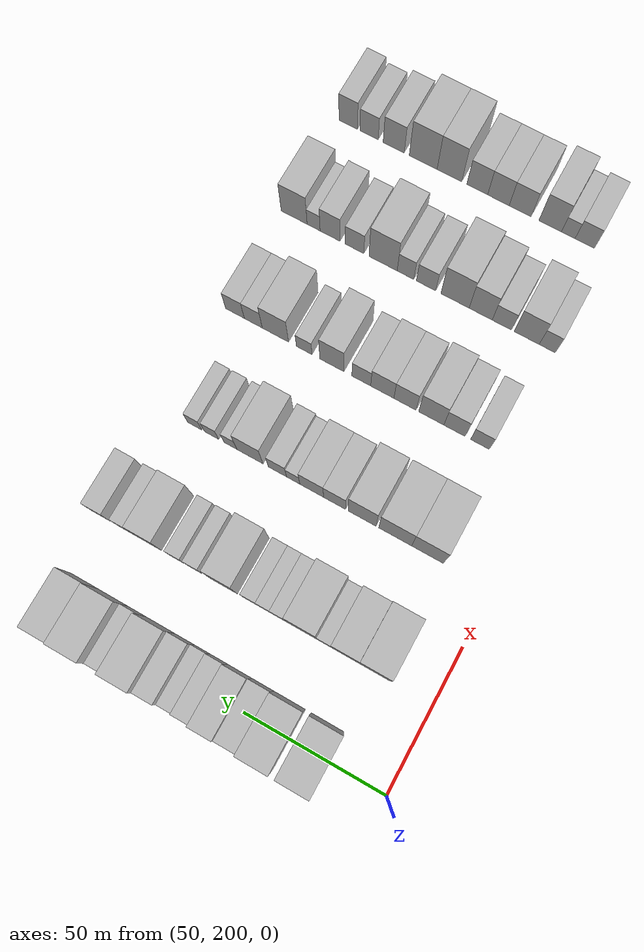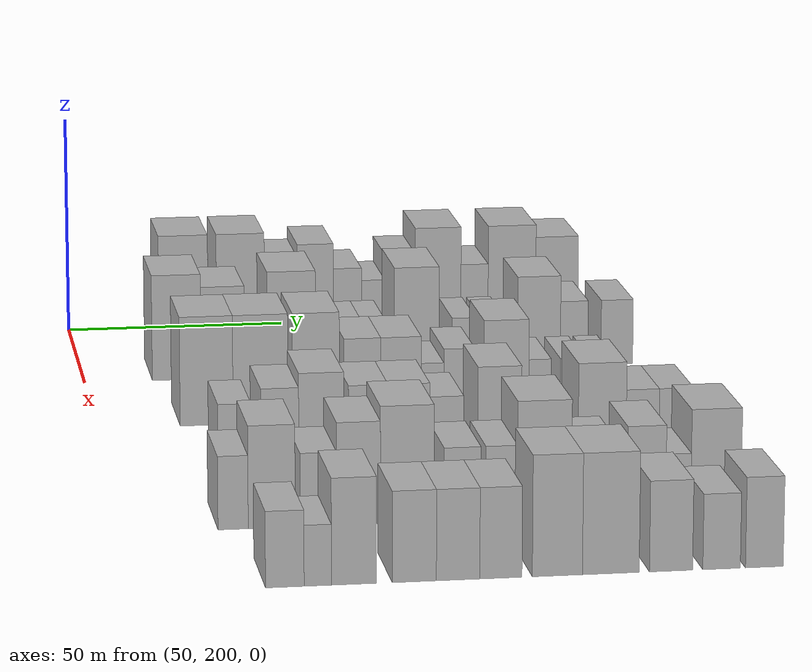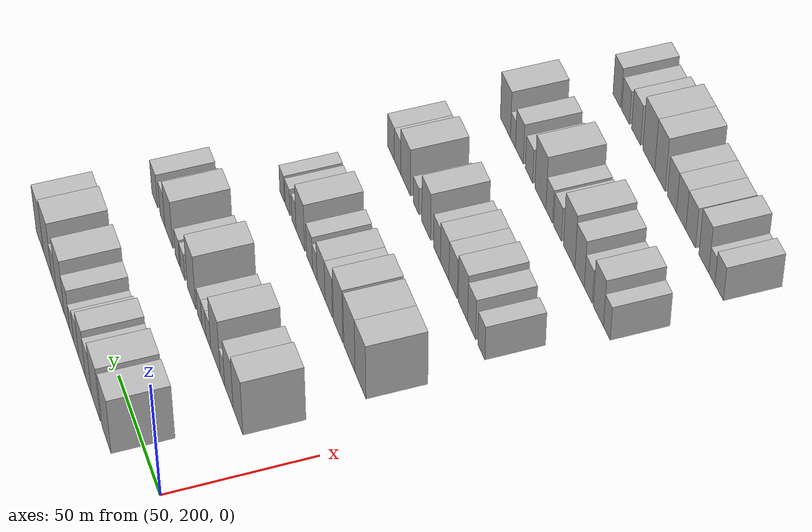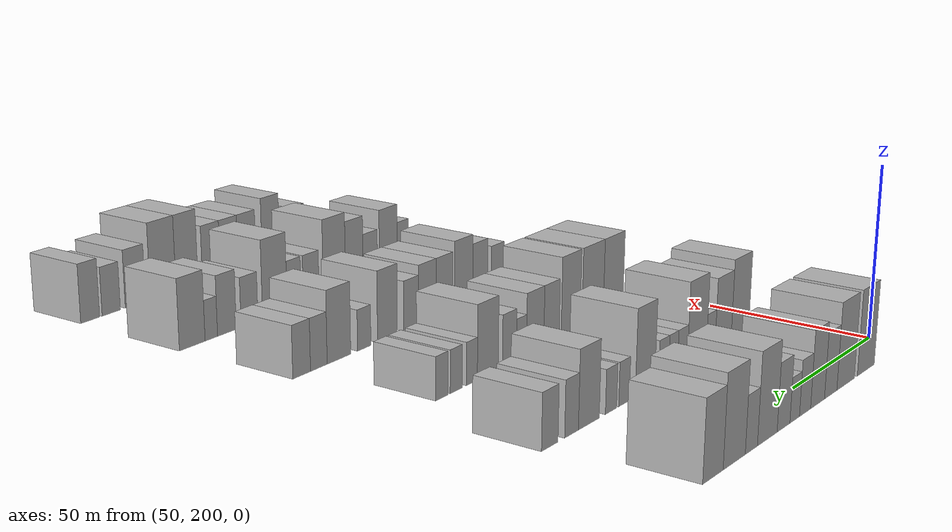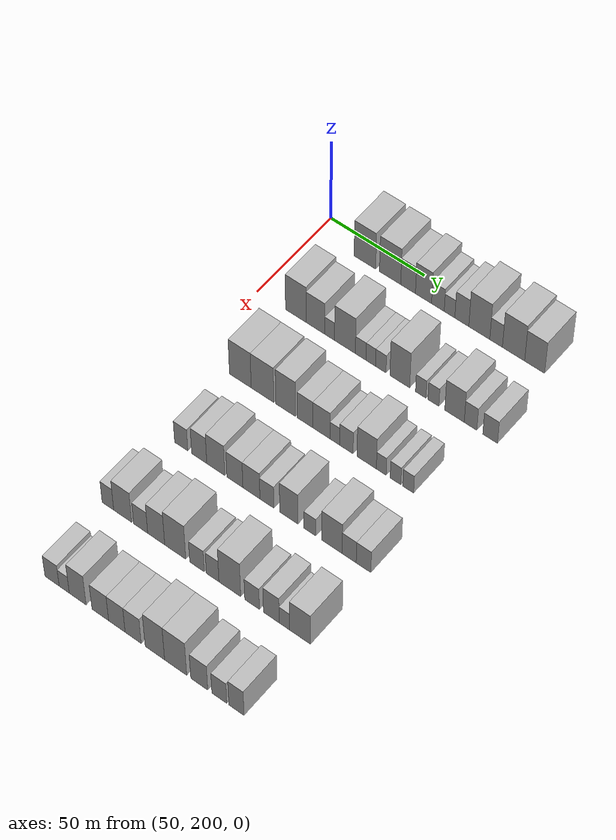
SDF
<sdf version="1.6">
 <world name="default">
  <model name="building_92">
   <static>1</static>
   <pose>50.0000 225.9743 0 0.000000 0.000000 0.000000</pose>
   <link name="link">
    <pose>0 0 12.00 0 0 0</pose>
    <collision name="collision"><geometry><box><size>20.0000 11.4187 24.0000</size></box></geometry></collision>
    <visual name="visual">
     <cast_shadows>0</cast_shadows>
     <geometry><box><size>20.0000 11.4187 24.0000</size></box></geometry>
     <material>
      <script>
       <uri>model://HANNAS_wall/materials/scripts</uri>
       <uri>model://HANNAS_wall/materials/textures</uri>
       <name>vrc/HANNAS_wall</name>
      </script>
     </material>
    </visual>
   </link>
  </model>
  <model name="building_93">
   <static>1</static>
   <pose>50.0000 239.2948 0 0.000000 0.000000 0.000000</pose>
   <link name="link">
    <pose>0 0 12.00 0 0 0</pose>
    <collision name="collision"><geometry><box><size>20.0000 11.2223 24.0000</size></box></geometry></collision>
    <visual name="visual">
     <cast_shadows>0</cast_shadows>
     <geometry><box><size>20.0000 11.2223 24.0000</size></box></geometry>
     <material>
      <script>
       <uri>model://HANNAS_wall/materials/scripts</uri>
       <uri>model://HANNAS_wall/materials/textures</uri>
       <name>vrc/HANNAS_wall</name>
      </script>
     </material>
    </visual>
   </link>
  </model>
  <model name="building_94">
   <static>1</static>
   <pose>50.0000 248.7724 0 0.000000 0.000000 0.000000</pose>
   <link name="link">
    <pose>0 0 9.00 0 0 0</pose>
    <collision name="collision"><geometry><box><size>20.0000 7.7330 18.0000</size></box></geometry></collision>
    <visual name="visual">
     <cast_shadows>0</cast_shadows>
     <geometry><box><size>20.0000 7.7330 18.0000</size></box></geometry>
     <material>
      <script>
       <uri>model://HANNAS_wall/materials/scripts</uri>
       <uri>model://HANNAS_wall/materials/textures</uri>
       <name>vrc/HANNAS_wall</name>
      </script>
     </material>
    </visual>
   </link>
  </model>
  <model name="building_95">
   <static>1</static>
   <pose>50.0000 256.8523 0 0.000000 0.000000 0.000000</pose>
   <link name="link">
    <pose>0 0 10.50 0 0 0</pose>
    <collision name="collision"><geometry><box><size>20.0000 8.4268 21.0000</size></box></geometry></collision>
    <visual name="visual">
     <cast_shadows>0</cast_shadows>
     <geometry><box><size>20.0000 8.4268 21.0000</size></box></geometry>
     <material>
      <script>
       <uri>model://HANNAS_wall/materials/scripts</uri>
       <uri>model://HANNAS_wall/materials/textures</uri>
       <name>vrc/HANNAS_wall</name>
      </script>
     </material>
    </visual>
   </link>
  </model>
  <model name="building_96">
   <static>1</static>
   <pose>50.0000 264.3594 0 0.000000 0.000000 0.000000</pose>
   <link name="link">
    <pose>0 0 7.50 0 0 0</pose>
    <collision name="collision"><geometry><box><size>20.0000 6.5873 15.0000</size></box></geometry></collision>
    <visual name="visual">
     <cast_shadows>0</cast_shadows>
     <geometry><box><size>20.0000 6.5873 15.0000</size></box></geometry>
     <material>
      <script>
       <uri>model://HANNAS_wall/materials/scripts</uri>
       <uri>model://HANNAS_wall/materials/textures</uri>
       <name>vrc/HANNAS_wall</name>
      </script>
     </material>
    </visual>
   </link>
  </model>
  <model name="building_97">
   <static>1</static>
   <pose>50.0000 270.4090 0 0.000000 0.000000 0.000000</pose>
   <link name="link">
    <pose>0 0 6.00 0 0 0</pose>
    <collision name="collision"><geometry><box><size>20.0000 5.5120 12.0000</size></box></geometry></collision>
    <visual name="visual">
     <cast_shadows>0</cast_shadows>
     <geometry><box><size>20.0000 5.5120 12.0000</size></box></geometry>
     <material>
      <script>
       <uri>model://HANNAS_wall/materials/scripts</uri>
       <uri>model://HANNAS_wall/materials/textures</uri>
       <name>vrc/HANNAS_wall</name>
      </script>
     </material>
    </visual>
   </link>
  </model>
  <model name="building_98">
   <static>1</static>
   <pose>50.0000 276.7768 0 0.000000 0.000000 0.000000</pose>
   <link name="link">
    <pose>0 0 9.00 0 0 0</pose>
    <collision name="collision"><geometry><box><size>20.0000 7.2236 18.0000</size></box></geometry></collision>
    <visual name="visual">
     <cast_shadows>0</cast_shadows>
     <geometry><box><size>20.0000 7.2236 18.0000</size></box></geometry>
     <material>
      <script>
       <uri>model://HANNAS_wall/materials/scripts</uri>
       <uri>model://HANNAS_wall/materials/textures</uri>
       <name>vrc/HANNAS_wall</name>
      </script>
     </material>
    </visual>
   </link>
  </model>
  <model name="building_99">
   <static>1</static>
   <pose>50.0000 285.7733 0 0.000000 0.000000 0.000000</pose>
   <link name="link">
    <pose>0 0 12.00 0 0 0</pose>
    <collision name="collision"><geometry><box><size>20.0000 10.7693 24.0000</size></box></geometry></collision>
    <visual name="visual">
     <cast_shadows>0</cast_shadows>
     <geometry><box><size>20.0000 10.7693 24.0000</size></box></geometry>
     <material>
      <script>
       <uri>model://HANNAS_wall/materials/scripts</uri>
       <uri>model://HANNAS_wall/materials/textures</uri>
       <name>vrc/HANNAS_wall</name>
      </script>
     </material>
    </visual>
   </link>
  </model>
  <model name="building_100">
   <static>1</static>
   <pose>50.0000 294.3728 0 0.000000 0.000000 0.000000</pose>
   <link name="link">
    <pose>0 0 7.50 0 0 0</pose>
    <collision name="collision"><geometry><box><size>20.0000 6.4296 15.0000</size></box></geometry></collision>
    <visual name="visual">
     <cast_shadows>0</cast_shadows>
     <geometry><box><size>20.0000 6.4296 15.0000</size></box></geometry>
     <material>
      <script>
       <uri>model://HANNAS_wall/materials/scripts</uri>
       <uri>model://HANNAS_wall/materials/textures</uri>
       <name>vrc/HANNAS_wall</name>
      </script>
     </material>
    </visual>
   </link>
  </model>
  <model name="building_101">
   <static>1</static>
   <pose>50.0000 303.2512 0 0.000000 0.000000 0.000000</pose>
   <link name="link">
    <pose>0 0 12.00 0 0 0</pose>
    <collision name="collision"><geometry><box><size>20.0000 11.3271 24.0000</size></box></geometry></collision>
    <visual name="visual">
     <cast_shadows>0</cast_shadows>
     <geometry><box><size>20.0000 11.3271 24.0000</size></box></geometry>
     <material>
      <script>
       <uri>model://HANNAS_wall/materials/scripts</uri>
       <uri>model://HANNAS_wall/materials/textures</uri>
       <name>vrc/HANNAS_wall</name>
      </script>
     </material>
    </visual>
   </link>
  </model>
  <model name="building_102">
   <static>1</static>
   <pose>50.0000 313.9579 0 0.000000 0.000000 0.000000</pose>
   <link name="link">
    <pose>0 0 10.50 0 0 0</pose>
    <collision name="collision"><geometry><box><size>20.0000 10.0864 21.0000</size></box></geometry></collision>
    <visual name="visual">
     <cast_shadows>0</cast_shadows>
     <geometry><box><size>20.0000 10.0864 21.0000</size></box></geometry>
     <material>
      <script>
       <uri>model://HANNAS_wall/materials/scripts</uri>
       <uri>model://HANNAS_wall/materials/textures</uri>
       <name>vrc/HANNAS_wall</name>
      </script>
     </material>
    </visual>
   </link>
  </model>
  <model name="building_231">
   <static>1</static>
   <pose>90.0000 220.5710 0 0.000000 0.000000 0.000000</pose>
   <link name="link">
    <pose>0 0 12.00 0 0 0</pose>
    <collision name="collision"><geometry><box><size>20.0000 10.9302 24.0000</size></box></geometry></collision>
    <visual name="visual">
     <cast_shadows>0</cast_shadows>
     <geometry><box><size>20.0000 10.9302 24.0000</size></box></geometry>
     <material>
      <script>
       <uri>model://HANNAS_wall/materials/scripts</uri>
       <uri>model://HANNAS_wall/materials/textures</uri>
       <name>vrc/HANNAS_wall</name>
      </script>
     </material>
    </visual>
   </link>
  </model>
  <model name="building_232">
   <static>1</static>
   <pose>90.0000 230.9264 0 0.000000 0.000000 0.000000</pose>
   <link name="link">
    <pose>0 0 10.50 0 0 0</pose>
    <collision name="collision"><geometry><box><size>20.0000 9.7805 21.0000</size></box></geometry></collision>
    <visual name="visual">
     <cast_shadows>0</cast_shadows>
     <geometry><box><size>20.0000 9.7805 21.0000</size></box></geometry>
     <material>
      <script>
       <uri>model://HANNAS_wall/materials/scripts</uri>
       <uri>model://HANNAS_wall/materials/textures</uri>
       <name>vrc/HANNAS_wall</name>
      </script>
     </material>
    </visual>
   </link>
  </model>
  <model name="building_233">
   <static>1</static>
   <pose>90.0000 238.3762 0 0.000000 0.000000 0.000000</pose>
   <link name="link">
    <pose>0 0 6.00 0 0 0</pose>
    <collision name="collision"><geometry><box><size>20.0000 5.1191 12.0000</size></box></geometry></collision>
    <visual name="visual">
     <cast_shadows>0</cast_shadows>
     <geometry><box><size>20.0000 5.1191 12.0000</size></box></geometry>
     <material>
      <script>
       <uri>model://HANNAS_wall/materials/scripts</uri>
       <uri>model://HANNAS_wall/materials/textures</uri>
       <name>vrc/HANNAS_wall</name>
      </script>
     </material>
    </visual>
   </link>
  </model>
  <model name="building_234">
   <static>1</static>
   <pose>90.0000 246.3861 0 0.000000 0.000000 0.000000</pose>
   <link name="link">
    <pose>0 0 12.00 0 0 0</pose>
    <collision name="collision"><geometry><box><size>20.0000 10.9008 24.0000</size></box></geometry></collision>
    <visual name="visual">
     <cast_shadows>0</cast_shadows>
     <geometry><box><size>20.0000 10.9008 24.0000</size></box></geometry>
     <material>
      <script>
       <uri>model://HANNAS_wall/materials/scripts</uri>
       <uri>model://HANNAS_wall/materials/textures</uri>
       <name>vrc/HANNAS_wall</name>
      </script>
     </material>
    </visual>
   </link>
  </model>
  <model name="building_235">
   <static>1</static>
   <pose>90.0000 254.6111 0 0.000000 0.000000 0.000000</pose>
   <link name="link">
    <pose>0 0 6.00 0 0 0</pose>
    <collision name="collision"><geometry><box><size>20.0000 5.5491 12.0000</size></box></geometry></collision>
    <visual name="visual">
     <cast_shadows>0</cast_shadows>
     <geometry><box><size>20.0000 5.5491 12.0000</size></box></geometry>
     <material>
      <script>
       <uri>model://HANNAS_wall/materials/scripts</uri>
       <uri>model://HANNAS_wall/materials/textures</uri>
       <name>vrc/HANNAS_wall</name>
      </script>
     </material>
    </visual>
   </link>
  </model>
  <model name="building_236">
   <static>1</static>
   <pose>90.0000 259.8563 0 0.000000 0.000000 0.000000</pose>
   <link name="link">
    <pose>0 0 6.00 0 0 0</pose>
    <collision name="collision"><geometry><box><size>20.0000 4.9412 12.0000</size></box></geometry></collision>
    <visual name="visual">
     <cast_shadows>0</cast_shadows>
     <geometry><box><size>20.0000 4.9412 12.0000</size></box></geometry>
     <material>
      <script>
       <uri>model://HANNAS_wall/materials/scripts</uri>
       <uri>model://HANNAS_wall/materials/textures</uri>
       <name>vrc/HANNAS_wall</name>
      </script>
     </material>
    </visual>
   </link>
  </model>
  <model name="building_237">
   <static>1</static>
   <pose>90.0000 265.0188 0 0.000000 0.000000 0.000000</pose>
   <link name="link">
    <pose>0 0 6.00 0 0 0</pose>
    <collision name="collision"><geometry><box><size>20.0000 5.3839 12.0000</size></box></geometry></collision>
    <visual name="visual">
     <cast_shadows>0</cast_shadows>
     <geometry><box><size>20.0000 5.3839 12.0000</size></box></geometry>
     <material>
      <script>
       <uri>model://HANNAS_wall/materials/scripts</uri>
       <uri>model://HANNAS_wall/materials/textures</uri>
       <name>vrc/HANNAS_wall</name>
      </script>
     </material>
    </visual>
   </link>
  </model>
  <model name="building_238">
   <static>1</static>
   <pose>90.0000 274.7908 0 0.000000 0.000000 0.000000</pose>
   <link name="link">
    <pose>0 0 12.00 0 0 0</pose>
    <collision name="collision"><geometry><box><size>20.0000 10.1601 24.0000</size></box></geometry></collision>
    <visual name="visual">
     <cast_shadows>0</cast_shadows>
     <geometry><box><size>20.0000 10.1601 24.0000</size></box></geometry>
     <material>
      <script>
       <uri>model://HANNAS_wall/materials/scripts</uri>
       <uri>model://HANNAS_wall/materials/textures</uri>
       <name>vrc/HANNAS_wall</name>
      </script>
     </material>
    </visual>
   </link>
  </model>
  <model name="building_239">
   <static>1</static>
   <pose>90.0000 285.5514 0 0.000000 0.000000 0.000000</pose>
   <link name="link">
    <pose>0 0 6.00 0 0 0</pose>
    <collision name="collision"><geometry><box><size>20.0000 5.3610 12.0000</size></box></geometry></collision>
    <visual name="visual">
     <cast_shadows>0</cast_shadows>
     <geometry><box><size>20.0000 5.3610 12.0000</size></box></geometry>
     <material>
      <script>
       <uri>model://HANNAS_wall/materials/scripts</uri>
       <uri>model://HANNAS_wall/materials/textures</uri>
       <name>vrc/HANNAS_wall</name>
      </script>
     </material>
    </visual>
   </link>
  </model>
  <model name="building_240">
   <static>1</static>
   <pose>90.0000 291.9992 0 0.000000 0.000000 0.000000</pose>
   <link name="link">
    <pose>0 0 6.00 0 0 0</pose>
    <collision name="collision"><geometry><box><size>20.0000 5.5346 12.0000</size></box></geometry></collision>
    <visual name="visual">
     <cast_shadows>0</cast_shadows>
     <geometry><box><size>20.0000 5.5346 12.0000</size></box></geometry>
     <material>
      <script>
       <uri>model://HANNAS_wall/materials/scripts</uri>
       <uri>model://HANNAS_wall/materials/textures</uri>
       <name>vrc/HANNAS_wall</name>
      </script>
     </material>
    </visual>
   </link>
  </model>
  <model name="building_241">
   <static>1</static>
   <pose>90.0000 302.6883 0 0.000000 0.000000 0.000000</pose>
   <link name="link">
    <pose>0 0 10.50 0 0 0</pose>
    <collision name="collision"><geometry><box><size>20.0000 9.8436 21.0000</size></box></geometry></collision>
    <visual name="visual">
     <cast_shadows>0</cast_shadows>
     <geometry><box><size>20.0000 9.8436 21.0000</size></box></geometry>
     <material>
      <script>
       <uri>model://HANNAS_wall/materials/scripts</uri>
       <uri>model://HANNAS_wall/materials/textures</uri>
       <name>vrc/HANNAS_wall</name>
      </script>
     </material>
    </visual>
   </link>
  </model>
  <model name="building_242">
   <static>1</static>
   <pose>90.0000 310.7760 0 0.000000 0.000000 0.000000</pose>
   <link name="link">
    <pose>0 0 7.50 0 0 0</pose>
    <collision name="collision"><geometry><box><size>20.0000 6.3318 15.0000</size></box></geometry></collision>
    <visual name="visual">
     <cast_shadows>0</cast_shadows>
     <geometry><box><size>20.0000 6.3318 15.0000</size></box></geometry>
     <material>
      <script>
       <uri>model://HANNAS_wall/materials/scripts</uri>
       <uri>model://HANNAS_wall/materials/textures</uri>
       <name>vrc/HANNAS_wall</name>
      </script>
     </material>
    </visual>
   </link>
  </model>
  <model name="building_243">
   <static>1</static>
   <pose>90.0000 320.6049 0 0.000000 0.000000 0.000000</pose>
   <link name="link">
    <pose>0 0 7.50 0 0 0</pose>
    <collision name="collision"><geometry><box><size>20.0000 7.3259 15.0000</size></box></geometry></collision>
    <visual name="visual">
     <cast_shadows>0</cast_shadows>
     <geometry><box><size>20.0000 7.3259 15.0000</size></box></geometry>
     <material>
      <script>
       <uri>model://HANNAS_wall/materials/scripts</uri>
       <uri>model://HANNAS_wall/materials/textures</uri>
       <name>vrc/HANNAS_wall</name>
      </script>
     </material>
    </visual>
   </link>
  </model>
  <model name="building_366">
   <static>1</static>
   <pose>130.0000 223.2347 0 0.000000 0.000000 0.000000</pose>
   <link name="link">
    <pose>0 0 12.00 0 0 0</pose>
    <collision name="collision"><geometry><box><size>20.0000 11.4312 24.0000</size></box></geometry></collision>
    <visual name="visual">
     <cast_shadows>0</cast_shadows>
     <geometry><box><size>20.0000 11.4312 24.0000</size></box></geometry>
     <material>
      <script>
       <uri>model://HANNAS_wall/materials/scripts</uri>
       <uri>model://HANNAS_wall/materials/textures</uri>
       <name>vrc/HANNAS_wall</name>
      </script>
     </material>
    </visual>
   </link>
  </model>
  <model name="building_367">
   <static>1</static>
   <pose>130.0000 234.8953 0 0.000000 0.000000 0.000000</pose>
   <link name="link">
    <pose>0 0 12.00 0 0 0</pose>
    <collision name="collision"><geometry><box><size>20.0000 11.8900 24.0000</size></box></geometry></collision>
    <visual name="visual">
     <cast_shadows>0</cast_shadows>
     <geometry><box><size>20.0000 11.8900 24.0000</size></box></geometry>
     <material>
      <script>
       <uri>model://HANNAS_wall/materials/scripts</uri>
       <uri>model://HANNAS_wall/materials/textures</uri>
       <name>vrc/HANNAS_wall</name>
      </script>
     </material>
    </visual>
   </link>
  </model>
  <model name="building_368">
   <static>1</static>
   <pose>130.0000 246.9262 0 0.000000 0.000000 0.000000</pose>
   <link name="link">
    <pose>0 0 12.00 0 0 0</pose>
    <collision name="collision"><geometry><box><size>20.0000 10.1720 24.0000</size></box></geometry></collision>
    <visual name="visual">
     <cast_shadows>0</cast_shadows>
     <geometry><box><size>20.0000 10.1720 24.0000</size></box></geometry>
     <material>
      <script>
       <uri>model://HANNAS_wall/materials/scripts</uri>
       <uri>model://HANNAS_wall/materials/textures</uri>
       <name>vrc/HANNAS_wall</name>
      </script>
     </material>
    </visual>
   </link>
  </model>
  <model name="building_369">
   <static>1</static>
   <pose>130.0000 257.0240 0 0.000000 0.000000 0.000000</pose>
   <link name="link">
    <pose>0 0 9.00 0 0 0</pose>
    <collision name="collision"><geometry><box><size>20.0000 8.0236 18.0000</size></box></geometry></collision>
    <visual name="visual">
     <cast_shadows>0</cast_shadows>
     <geometry><box><size>20.0000 8.0236 18.0000</size></box></geometry>
     <material>
      <script>
       <uri>model://HANNAS_wall/materials/scripts</uri>
       <uri>model://HANNAS_wall/materials/textures</uri>
       <name>vrc/HANNAS_wall</name>
      </script>
     </material>
    </visual>
   </link>
  </model>
  <model name="building_370">
   <static>1</static>
   <pose>130.0000 265.4401 0 0.000000 0.000000 0.000000</pose>
   <link name="link">
    <pose>0 0 9.00 0 0 0</pose>
    <collision name="collision"><geometry><box><size>20.0000 8.8086 18.0000</size></box></geometry></collision>
    <visual name="visual">
     <cast_shadows>0</cast_shadows>
     <geometry><box><size>20.0000 8.8086 18.0000</size></box></geometry>
     <material>
      <script>
       <uri>model://HANNAS_wall/materials/scripts</uri>
       <uri>model://HANNAS_wall/materials/textures</uri>
       <name>vrc/HANNAS_wall</name>
      </script>
     </material>
    </visual>
   </link>
  </model>
  <model name="building_371">
   <static>1</static>
   <pose>130.0000 272.3133 0 0.000000 0.000000 0.000000</pose>
   <link name="link">
    <pose>0 0 6.00 0 0 0</pose>
    <collision name="collision"><geometry><box><size>20.0000 4.9378 12.0000</size></box></geometry></collision>
    <visual name="visual">
     <cast_shadows>0</cast_shadows>
     <geometry><box><size>20.0000 4.9378 12.0000</size></box></geometry>
     <material>
      <script>
       <uri>model://HANNAS_wall/materials/scripts</uri>
       <uri>model://HANNAS_wall/materials/textures</uri>
       <name>vrc/HANNAS_wall</name>
      </script>
     </material>
    </visual>
   </link>
  </model>
  <model name="building_372">
   <static>1</static>
   <pose>130.0000 278.1864 0 0.000000 0.000000 0.000000</pose>
   <link name="link">
    <pose>0 0 7.50 0 0 0</pose>
    <collision name="collision"><geometry><box><size>20.0000 6.8084 15.0000</size></box></geometry></collision>
    <visual name="visual">
     <cast_shadows>0</cast_shadows>
     <geometry><box><size>20.0000 6.8084 15.0000</size></box></geometry>
     <material>
      <script>
       <uri>model://HANNAS_wall/materials/scripts</uri>
       <uri>model://HANNAS_wall/materials/textures</uri>
       <name>vrc/HANNAS_wall</name>
      </script>
     </material>
    </visual>
   </link>
  </model>
  <model name="building_373">
   <static>1</static>
   <pose>130.0000 288.5016 0 0.000000 0.000000 0.000000</pose>
   <link name="link">
    <pose>0 0 10.50 0 0 0</pose>
    <collision name="collision"><geometry><box><size>20.0000 9.8220 21.0000</size></box></geometry></collision>
    <visual name="visual">
     <cast_shadows>0</cast_shadows>
     <geometry><box><size>20.0000 9.8220 21.0000</size></box></geometry>
     <material>
      <script>
       <uri>model://HANNAS_wall/materials/scripts</uri>
       <uri>model://HANNAS_wall/materials/textures</uri>
       <name>vrc/HANNAS_wall</name>
      </script>
     </material>
    </visual>
   </link>
  </model>
  <model name="building_374">
   <static>1</static>
   <pose>130.0000 295.8861 0 0.000000 0.000000 0.000000</pose>
   <link name="link">
    <pose>0 0 6.00 0 0 0</pose>
    <collision name="collision"><geometry><box><size>20.0000 4.9471 12.0000</size></box></geometry></collision>
    <visual name="visual">
     <cast_shadows>0</cast_shadows>
     <geometry><box><size>20.0000 4.9471 12.0000</size></box></geometry>
     <material>
      <script>
       <uri>model://HANNAS_wall/materials/scripts</uri>
       <uri>model://HANNAS_wall/materials/textures</uri>
       <name>vrc/HANNAS_wall</name>
      </script>
     </material>
    </visual>
   </link>
  </model>
  <model name="building_375">
   <static>1</static>
   <pose>130.0000 303.0387 0 0.000000 0.000000 0.000000</pose>
   <link name="link">
    <pose>0 0 6.00 0 0 0</pose>
    <collision name="collision"><geometry><box><size>20.0000 5.3581 12.0000</size></box></geometry></collision>
    <visual name="visual">
     <cast_shadows>0</cast_shadows>
     <geometry><box><size>20.0000 5.3581 12.0000</size></box></geometry>
     <material>
      <script>
       <uri>model://HANNAS_wall/materials/scripts</uri>
       <uri>model://HANNAS_wall/materials/textures</uri>
       <name>vrc/HANNAS_wall</name>
      </script>
     </material>
    </visual>
   </link>
  </model>
  <model name="building_376">
   <static>1</static>
   <pose>130.0000 309.4185 0 0.000000 0.000000 0.000000</pose>
   <link name="link">
    <pose>0 0 6.00 0 0 0</pose>
    <collision name="collision"><geometry><box><size>20.0000 5.4016 12.0000</size></box></geometry></collision>
    <visual name="visual">
     <cast_shadows>0</cast_shadows>
     <geometry><box><size>20.0000 5.4016 12.0000</size></box></geometry>
     <material>
      <script>
       <uri>model://HANNAS_wall/materials/scripts</uri>
       <uri>model://HANNAS_wall/materials/textures</uri>
       <name>vrc/HANNAS_wall</name>
      </script>
     </material>
    </visual>
   </link>
  </model>
  <model name="building_506">
   <static>1</static>
   <pose>170.0000 225.0211 0 0.000000 0.000000 0.000000</pose>
   <link name="link">
    <pose>0 0 7.50 0 0 0</pose>
    <collision name="collision"><geometry><box><size>20.0000 6.8839 15.0000</size></box></geometry></collision>
    <visual name="visual">
     <cast_shadows>0</cast_shadows>
     <geometry><box><size>20.0000 6.8839 15.0000</size></box></geometry>
     <material>
      <script>
       <uri>model://HANNAS_wall/materials/scripts</uri>
       <uri>model://HANNAS_wall/materials/textures</uri>
       <name>vrc/HANNAS_wall</name>
      </script>
     </material>
    </visual>
   </link>
  </model>
  <model name="building_507">
   <static>1</static>
   <pose>170.0000 234.3957 0 0.000000 0.000000 0.000000</pose>
   <link name="link">
    <pose>0 0 9.00 0 0 0</pose>
    <collision name="collision"><geometry><box><size>20.0000 7.8653 18.0000</size></box></geometry></collision>
    <visual name="visual">
     <cast_shadows>0</cast_shadows>
     <geometry><box><size>20.0000 7.8653 18.0000</size></box></geometry>
     <material>
      <script>
       <uri>model://HANNAS_wall/materials/scripts</uri>
       <uri>model://HANNAS_wall/materials/textures</uri>
       <name>vrc/HANNAS_wall</name>
      </script>
     </material>
    </visual>
   </link>
  </model>
  <model name="building_508">
   <static>1</static>
   <pose>170.0000 243.0102 0 0.000000 0.000000 0.000000</pose>
   <link name="link">
    <pose>0 0 10.50 0 0 0</pose>
    <collision name="collision"><geometry><box><size>20.0000 9.3636 21.0000</size></box></geometry></collision>
    <visual name="visual">
     <cast_shadows>0</cast_shadows>
     <geometry><box><size>20.0000 9.3636 21.0000</size></box></geometry>
     <material>
      <script>
       <uri>model://HANNAS_wall/materials/scripts</uri>
       <uri>model://HANNAS_wall/materials/textures</uri>
       <name>vrc/HANNAS_wall</name>
      </script>
     </material>
    </visual>
   </link>
  </model>
  <model name="building_509">
   <static>1</static>
   <pose>170.0000 252.8334 0 0.000000 0.000000 0.000000</pose>
   <link name="link">
    <pose>0 0 9.00 0 0 0</pose>
    <collision name="collision"><geometry><box><size>20.0000 8.2827 18.0000</size></box></geometry></collision>
    <visual name="visual">
     <cast_shadows>0</cast_shadows>
     <geometry><box><size>20.0000 8.2827 18.0000</size></box></geometry>
     <material>
      <script>
       <uri>model://HANNAS_wall/materials/scripts</uri>
       <uri>model://HANNAS_wall/materials/textures</uri>
       <name>vrc/HANNAS_wall</name>
      </script>
     </material>
    </visual>
   </link>
  </model>
  <model name="building_510">
   <static>1</static>
   <pose>170.0000 261.3285 0 0.000000 0.000000 0.000000</pose>
   <link name="link">
    <pose>0 0 9.00 0 0 0</pose>
    <collision name="collision"><geometry><box><size>20.0000 8.7075 18.0000</size></box></geometry></collision>
    <visual name="visual">
     <cast_shadows>0</cast_shadows>
     <geometry><box><size>20.0000 8.7075 18.0000</size></box></geometry>
     <material>
      <script>
       <uri>model://HANNAS_wall/materials/scripts</uri>
       <uri>model://HANNAS_wall/materials/textures</uri>
       <name>vrc/HANNAS_wall</name>
      </script>
     </material>
    </visual>
   </link>
  </model>
  <model name="building_511">
   <static>1</static>
   <pose>170.0000 269.2402 0 0.000000 0.000000 0.000000</pose>
   <link name="link">
    <pose>0 0 7.50 0 0 0</pose>
    <collision name="collision"><geometry><box><size>20.0000 7.1160 15.0000</size></box></geometry></collision>
    <visual name="visual">
     <cast_shadows>0</cast_shadows>
     <geometry><box><size>20.0000 7.1160 15.0000</size></box></geometry>
     <material>
      <script>
       <uri>model://HANNAS_wall/materials/scripts</uri>
       <uri>model://HANNAS_wall/materials/textures</uri>
       <name>vrc/HANNAS_wall</name>
      </script>
     </material>
    </visual>
   </link>
  </model>
  <model name="building_512">
   <static>1</static>
   <pose>170.0000 280.3870 0 0.000000 0.000000 0.000000</pose>
   <link name="link">
    <pose>0 0 10.50 0 0 0</pose>
    <collision name="collision"><geometry><box><size>20.0000 9.1775 21.0000</size></box></geometry></collision>
    <visual name="visual">
     <cast_shadows>0</cast_shadows>
     <geometry><box><size>20.0000 9.1775 21.0000</size></box></geometry>
     <material>
      <script>
       <uri>model://HANNAS_wall/materials/scripts</uri>
       <uri>model://HANNAS_wall/materials/textures</uri>
       <name>vrc/HANNAS_wall</name>
      </script>
     </material>
    </visual>
   </link>
  </model>
  <model name="building_513">
   <static>1</static>
   <pose>170.0000 290.9693 0 0.000000 0.000000 0.000000</pose>
   <link name="link">
    <pose>0 0 6.00 0 0 0</pose>
    <collision name="collision"><geometry><box><size>20.0000 5.9873 12.0000</size></box></geometry></collision>
    <visual name="visual">
     <cast_shadows>0</cast_shadows>
     <geometry><box><size>20.0000 5.9873 12.0000</size></box></geometry>
     <material>
      <script>
       <uri>model://HANNAS_wall/materials/scripts</uri>
       <uri>model://HANNAS_wall/materials/textures</uri>
       <name>vrc/HANNAS_wall</name>
      </script>
     </material>
    </visual>
   </link>
  </model>
  <model name="building_514">
   <static>1</static>
   <pose>170.0000 302.0450 0 0.000000 0.000000 0.000000</pose>
   <link name="link">
    <pose>0 0 10.50 0 0 0</pose>
    <collision name="collision"><geometry><box><size>20.0000 10.1641 21.0000</size></box></geometry></collision>
    <visual name="visual">
     <cast_shadows>0</cast_shadows>
     <geometry><box><size>20.0000 10.1641 21.0000</size></box></geometry>
     <material>
      <script>
       <uri>model://HANNAS_wall/materials/scripts</uri>
       <uri>model://HANNAS_wall/materials/textures</uri>
       <name>vrc/HANNAS_wall</name>
      </script>
     </material>
    </visual>
   </link>
  </model>
  <model name="building_515">
   <static>1</static>
   <pose>170.0000 310.6163 0 0.000000 0.000000 0.000000</pose>
   <link name="link">
    <pose>0 0 7.50 0 0 0</pose>
    <collision name="collision"><geometry><box><size>20.0000 6.9785 15.0000</size></box></geometry></collision>
    <visual name="visual">
     <cast_shadows>0</cast_shadows>
     <geometry><box><size>20.0000 6.9785 15.0000</size></box></geometry>
     <material>
      <script>
       <uri>model://HANNAS_wall/materials/scripts</uri>
       <uri>model://HANNAS_wall/materials/textures</uri>
       <name>vrc/HANNAS_wall</name>
      </script>
     </material>
    </visual>
   </link>
  </model>
  <model name="building_516">
   <static>1</static>
   <pose>170.0000 317.7378 0 0.000000 0.000000 0.000000</pose>
   <link name="link">
    <pose>0 0 7.50 0 0 0</pose>
    <collision name="collision"><geometry><box><size>20.0000 7.2645 15.0000</size></box></geometry></collision>
    <visual name="visual">
     <cast_shadows>0</cast_shadows>
     <geometry><box><size>20.0000 7.2645 15.0000</size></box></geometry>
     <material>
      <script>
       <uri>model://HANNAS_wall/materials/scripts</uri>
       <uri>model://HANNAS_wall/materials/textures</uri>
       <name>vrc/HANNAS_wall</name>
      </script>
     </material>
    </visual>
   </link>
  </model>
  <model name="building_640">
   <static>1</static>
   <pose>210.0000 220.3693 0 0.000000 0.000000 0.000000</pose>
   <link name="link">
    <pose>0 0 7.50 0 0 0</pose>
    <collision name="collision"><geometry><box><size>20.0000 6.0071 15.0000</size></box></geometry></collision>
    <visual name="visual">
     <cast_shadows>0</cast_shadows>
     <geometry><box><size>20.0000 6.0071 15.0000</size></box></geometry>
     <material>
      <script>
       <uri>model://HANNAS_wall/materials/scripts</uri>
       <uri>model://HANNAS_wall/materials/textures</uri>
       <name>vrc/HANNAS_wall</name>
      </script>
     </material>
    </visual>
   </link>
  </model>
  <model name="building_641">
   <static>1</static>
   <pose>210.0000 228.0496 0 0.000000 0.000000 0.000000</pose>
   <link name="link">
    <pose>0 0 10.50 0 0 0</pose>
    <collision name="collision"><geometry><box><size>20.0000 9.3536 21.0000</size></box></geometry></collision>
    <visual name="visual">
     <cast_shadows>0</cast_shadows>
     <geometry><box><size>20.0000 9.3536 21.0000</size></box></geometry>
     <material>
      <script>
       <uri>model://HANNAS_wall/materials/scripts</uri>
       <uri>model://HANNAS_wall/materials/textures</uri>
       <name>vrc/HANNAS_wall</name>
      </script>
     </material>
    </visual>
   </link>
  </model>
  <model name="building_642">
   <static>1</static>
   <pose>210.0000 237.3698 0 0.000000 0.000000 0.000000</pose>
   <link name="link">
    <pose>0 0 7.50 0 0 0</pose>
    <collision name="collision"><geometry><box><size>20.0000 7.2867 15.0000</size></box></geometry></collision>
    <visual name="visual">
     <cast_shadows>0</cast_shadows>
     <geometry><box><size>20.0000 7.2867 15.0000</size></box></geometry>
     <material>
      <script>
       <uri>model://HANNAS_wall/materials/scripts</uri>
       <uri>model://HANNAS_wall/materials/textures</uri>
       <name>vrc/HANNAS_wall</name>
      </script>
     </material>
    </visual>
   </link>
  </model>
  <model name="building_643">
   <static>1</static>
   <pose>210.0000 245.3890 0 0.000000 0.000000 0.000000</pose>
   <link name="link">
    <pose>0 0 10.50 0 0 0</pose>
    <collision name="collision"><geometry><box><size>20.0000 8.7519 21.0000</size></box></geometry></collision>
    <visual name="visual">
     <cast_shadows>0</cast_shadows>
     <geometry><box><size>20.0000 8.7519 21.0000</size></box></geometry>
     <material>
      <script>
       <uri>model://HANNAS_wall/materials/scripts</uri>
       <uri>model://HANNAS_wall/materials/textures</uri>
       <name>vrc/HANNAS_wall</name>
      </script>
     </material>
    </visual>
   </link>
  </model>
  <model name="building_644">
   <static>1</static>
   <pose>210.0000 255.1461 0 0.000000 0.000000 0.000000</pose>
   <link name="link">
    <pose>0 0 12.00 0 0 0</pose>
    <collision name="collision"><geometry><box><size>20.0000 10.7622 24.0000</size></box></geometry></collision>
    <visual name="visual">
     <cast_shadows>0</cast_shadows>
     <geometry><box><size>20.0000 10.7622 24.0000</size></box></geometry>
     <material>
      <script>
       <uri>model://HANNAS_wall/materials/scripts</uri>
       <uri>model://HANNAS_wall/materials/textures</uri>
       <name>vrc/HANNAS_wall</name>
      </script>
     </material>
    </visual>
   </link>
  </model>
  <model name="building_645">
   <static>1</static>
   <pose>210.0000 266.2246 0 0.000000 0.000000 0.000000</pose>
   <link name="link">
    <pose>0 0 7.50 0 0 0</pose>
    <collision name="collision"><geometry><box><size>20.0000 7.3948 15.0000</size></box></geometry></collision>
    <visual name="visual">
     <cast_shadows>0</cast_shadows>
     <geometry><box><size>20.0000 7.3948 15.0000</size></box></geometry>
     <material>
      <script>
       <uri>model://HANNAS_wall/materials/scripts</uri>
       <uri>model://HANNAS_wall/materials/textures</uri>
       <name>vrc/HANNAS_wall</name>
      </script>
     </material>
    </visual>
   </link>
  </model>
  <model name="building_646">
   <static>1</static>
   <pose>210.0000 274.1274 0 0.000000 0.000000 0.000000</pose>
   <link name="link">
    <pose>0 0 7.50 0 0 0</pose>
    <collision name="collision"><geometry><box><size>20.0000 6.4109 15.0000</size></box></geometry></collision>
    <visual name="visual">
     <cast_shadows>0</cast_shadows>
     <geometry><box><size>20.0000 6.4109 15.0000</size></box></geometry>
     <material>
      <script>
       <uri>model://HANNAS_wall/materials/scripts</uri>
       <uri>model://HANNAS_wall/materials/textures</uri>
       <name>vrc/HANNAS_wall</name>
      </script>
     </material>
    </visual>
   </link>
  </model>
  <model name="building_647">
   <static>1</static>
   <pose>210.0000 282.7959 0 0.000000 0.000000 0.000000</pose>
   <link name="link">
    <pose>0 0 12.00 0 0 0</pose>
    <collision name="collision"><geometry><box><size>20.0000 10.9262 24.0000</size></box></geometry></collision>
    <visual name="visual">
     <cast_shadows>0</cast_shadows>
     <geometry><box><size>20.0000 10.9262 24.0000</size></box></geometry>
     <material>
      <script>
       <uri>model://HANNAS_wall/materials/scripts</uri>
       <uri>model://HANNAS_wall/materials/textures</uri>
       <name>vrc/HANNAS_wall</name>
      </script>
     </material>
    </visual>
   </link>
  </model>
  <model name="building_648">
   <static>1</static>
   <pose>210.0000 293.9126 0 0.000000 0.000000 0.000000</pose>
   <link name="link">
    <pose>0 0 7.50 0 0 0</pose>
    <collision name="collision"><geometry><box><size>20.0000 7.3073 15.0000</size></box></geometry></collision>
    <visual name="visual">
     <cast_shadows>0</cast_shadows>
     <geometry><box><size>20.0000 7.3073 15.0000</size></box></geometry>
     <material>
      <script>
       <uri>model://HANNAS_wall/materials/scripts</uri>
       <uri>model://HANNAS_wall/materials/textures</uri>
       <name>vrc/HANNAS_wall</name>
      </script>
     </material>
    </visual>
   </link>
  </model>
  <model name="building_649">
   <static>1</static>
   <pose>210.0000 303.4955 0 0.000000 0.000000 0.000000</pose>
   <link name="link">
    <pose>0 0 9.00 0 0 0</pose>
    <collision name="collision"><geometry><box><size>20.0000 7.8585 18.0000</size></box></geometry></collision>
    <visual name="visual">
     <cast_shadows>0</cast_shadows>
     <geometry><box><size>20.0000 7.8585 18.0000</size></box></geometry>
     <material>
      <script>
       <uri>model://HANNAS_wall/materials/scripts</uri>
       <uri>model://HANNAS_wall/materials/textures</uri>
       <name>vrc/HANNAS_wall</name>
      </script>
     </material>
    </visual>
   </link>
  </model>
  <model name="building_650">
   <static>1</static>
   <pose>210.0000 309.9790 0 0.000000 0.000000 0.000000</pose>
   <link name="link">
    <pose>0 0 6.00 0 0 0</pose>
    <collision name="collision"><geometry><box><size>20.0000 5.1086 12.0000</size></box></geometry></collision>
    <visual name="visual">
     <cast_shadows>0</cast_shadows>
     <geometry><box><size>20.0000 5.1086 12.0000</size></box></geometry>
     <material>
      <script>
       <uri>model://HANNAS_wall/materials/scripts</uri>
       <uri>model://HANNAS_wall/materials/textures</uri>
       <name>vrc/HANNAS_wall</name>
      </script>
     </material>
    </visual>
   </link>
  </model>
  <model name="building_651">
   <static>1</static>
   <pose>210.0000 317.6714 0 0.000000 0.000000 0.000000</pose>
   <link name="link">
    <pose>0 0 10.50 0 0 0</pose>
    <collision name="collision"><geometry><box><size>20.0000 10.2762 21.0000</size></box></geometry></collision>
    <visual name="visual">
     <cast_shadows>0</cast_shadows>
     <geometry><box><size>20.0000 10.2762 21.0000</size></box></geometry>
     <material>
      <script>
       <uri>model://HANNAS_wall/materials/scripts</uri>
       <uri>model://HANNAS_wall/materials/textures</uri>
       <name>vrc/HANNAS_wall</name>
      </script>
     </material>
    </visual>
   </link>
  </model>
  <model name="building_788">
   <static>1</static>
   <pose>250.0000 225.9093 0 0.000000 0.000000 0.000000</pose>
   <link name="link">
    <pose>0 0 7.50 0 0 0</pose>
    <collision name="collision"><geometry><box><size>20.0000 7.3588 15.0000</size></box></geometry></collision>
    <visual name="visual">
     <cast_shadows>0</cast_shadows>
     <geometry><box><size>20.0000 7.3588 15.0000</size></box></geometry>
     <material>
      <script>
       <uri>model://HANNAS_wall/materials/scripts</uri>
       <uri>model://HANNAS_wall/materials/textures</uri>
       <name>vrc/HANNAS_wall</name>
      </script>
     </material>
    </visual>
   </link>
  </model>
  <model name="building_789">
   <static>1</static>
   <pose>250.0000 232.1916 0 0.000000 0.000000 0.000000</pose>
   <link name="link">
    <pose>0 0 6.00 0 0 0</pose>
    <collision name="collision"><geometry><box><size>20.0000 5.2059 12.0000</size></box></geometry></collision>
    <visual name="visual">
     <cast_shadows>0</cast_shadows>
     <geometry><box><size>20.0000 5.2059 12.0000</size></box></geometry>
     <material>
      <script>
       <uri>model://HANNAS_wall/materials/scripts</uri>
       <uri>model://HANNAS_wall/materials/textures</uri>
       <name>vrc/HANNAS_wall</name>
      </script>
     </material>
    </visual>
   </link>
  </model>
  <model name="building_790">
   <static>1</static>
   <pose>250.0000 239.1086 0 0.000000 0.000000 0.000000</pose>
   <link name="link">
    <pose>0 0 10.50 0 0 0</pose>
    <collision name="collision"><geometry><box><size>20.0000 8.6280 21.0000</size></box></geometry></collision>
    <visual name="visual">
     <cast_shadows>0</cast_shadows>
     <geometry><box><size>20.0000 8.6280 21.0000</size></box></geometry>
     <material>
      <script>
       <uri>model://HANNAS_wall/materials/scripts</uri>
       <uri>model://HANNAS_wall/materials/textures</uri>
       <name>vrc/HANNAS_wall</name>
      </script>
     </material>
    </visual>
   </link>
  </model>
  <model name="building_791">
   <static>1</static>
   <pose>250.0000 250.6608 0 0.000000 0.000000 0.000000</pose>
   <link name="link">
    <pose>0 0 9.00 0 0 0</pose>
    <collision name="collision"><geometry><box><size>20.0000 8.4765 18.0000</size></box></geometry></collision>
    <visual name="visual">
     <cast_shadows>0</cast_shadows>
     <geometry><box><size>20.0000 8.4765 18.0000</size></box></geometry>
     <material>
      <script>
       <uri>model://HANNAS_wall/materials/scripts</uri>
       <uri>model://HANNAS_wall/materials/textures</uri>
       <name>vrc/HANNAS_wall</name>
      </script>
     </material>
    </visual>
   </link>
  </model>
  <model name="building_792">
   <static>1</static>
   <pose>250.0000 259.0807 0 0.000000 0.000000 0.000000</pose>
   <link name="link">
    <pose>0 0 9.00 0 0 0</pose>
    <collision name="collision"><geometry><box><size>20.0000 8.3632 18.0000</size></box></geometry></collision>
    <visual name="visual">
     <cast_shadows>0</cast_shadows>
     <geometry><box><size>20.0000 8.3632 18.0000</size></box></geometry>
     <material>
      <script>
       <uri>model://HANNAS_wall/materials/scripts</uri>
       <uri>model://HANNAS_wall/materials/textures</uri>
       <name>vrc/HANNAS_wall</name>
      </script>
     </material>
    </visual>
   </link>
  </model>
  <model name="building_793">
   <static>1</static>
   <pose>250.0000 267.3243 0 0.000000 0.000000 0.000000</pose>
   <link name="link">
    <pose>0 0 9.00 0 0 0</pose>
    <collision name="collision"><geometry><box><size>20.0000 8.1239 18.0000</size></box></geometry></collision>
    <visual name="visual">
     <cast_shadows>0</cast_shadows>
     <geometry><box><size>20.0000 8.1239 18.0000</size></box></geometry>
     <material>
      <script>
       <uri>model://HANNAS_wall/materials/scripts</uri>
       <uri>model://HANNAS_wall/materials/textures</uri>
       <name>vrc/HANNAS_wall</name>
      </script>
     </material>
    </visual>
   </link>
  </model>
  <model name="building_794">
   <static>1</static>
   <pose>250.0000 278.2399 0 0.000000 0.000000 0.000000</pose>
   <link name="link">
    <pose>0 0 12.00 0 0 0</pose>
    <collision name="collision"><geometry><box><size>20.0000 9.7074 24.0000</size></box></geometry></collision>
    <visual name="visual">
     <cast_shadows>0</cast_shadows>
     <geometry><box><size>20.0000 9.7074 24.0000</size></box></geometry>
     <material>
      <script>
       <uri>model://HANNAS_wall/materials/scripts</uri>
       <uri>model://HANNAS_wall/materials/textures</uri>
       <name>vrc/HANNAS_wall</name>
      </script>
     </material>
    </visual>
   </link>
  </model>
  <model name="building_795">
   <static>1</static>
   <pose>250.0000 288.6036 0 0.000000 0.000000 0.000000</pose>
   <link name="link">
    <pose>0 0 12.00 0 0 0</pose>
    <collision name="collision"><geometry><box><size>20.0000 11.0200 24.0000</size></box></geometry></collision>
    <visual name="visual">
     <cast_shadows>0</cast_shadows>
     <geometry><box><size>20.0000 11.0200 24.0000</size></box></geometry>
     <material>
      <script>
       <uri>model://HANNAS_wall/materials/scripts</uri>
       <uri>model://HANNAS_wall/materials/textures</uri>
       <name>vrc/HANNAS_wall</name>
      </script>
     </material>
    </visual>
   </link>
  </model>
  <model name="building_796">
   <static>1</static>
   <pose>250.0000 300.3178 0 0.000000 0.000000 0.000000</pose>
   <link name="link">
    <pose>0 0 9.00 0 0 0</pose>
    <collision name="collision"><geometry><box><size>20.0000 8.4086 18.0000</size></box></geometry></collision>
    <visual name="visual">
     <cast_shadows>0</cast_shadows>
     <geometry><box><size>20.0000 8.4086 18.0000</size></box></geometry>
     <material>
      <script>
       <uri>model://HANNAS_wall/materials/scripts</uri>
       <uri>model://HANNAS_wall/materials/textures</uri>
       <name>vrc/HANNAS_wall</name>
      </script>
     </material>
    </visual>
   </link>
  </model>
  <model name="building_797">
   <static>1</static>
   <pose>250.0000 310.1925 0 0.000000 0.000000 0.000000</pose>
   <link name="link">
    <pose>0 0 7.50 0 0 0</pose>
    <collision name="collision"><geometry><box><size>20.0000 7.3408 15.0000</size></box></geometry></collision>
    <visual name="visual">
     <cast_shadows>0</cast_shadows>
     <geometry><box><size>20.0000 7.3408 15.0000</size></box></geometry>
     <material>
      <script>
       <uri>model://HANNAS_wall/materials/scripts</uri>
       <uri>model://HANNAS_wall/materials/textures</uri>
       <name>vrc/HANNAS_wall</name>
      </script>
     </material>
    </visual>
   </link>
  </model>
  <model name="building_798">
   <static>1</static>
   <pose>250.0000 318.5673 0 0.000000 0.000000 0.000000</pose>
   <link name="link">
    <pose>0 0 9.00 0 0 0</pose>
    <collision name="collision"><geometry><box><size>20.0000 7.4088 18.0000</size></box></geometry></collision>
    <visual name="visual">
     <cast_shadows>0</cast_shadows>
     <geometry><box><size>20.0000 7.4088 18.0000</size></box></geometry>
     <material>
      <script>
       <uri>model://HANNAS_wall/materials/scripts</uri>
       <uri>model://HANNAS_wall/materials/textures</uri>
       <name>vrc/HANNAS_wall</name>
      </script>
     </material>
    </visual>
   </link>
  </model>
 </world>
</sdf>
